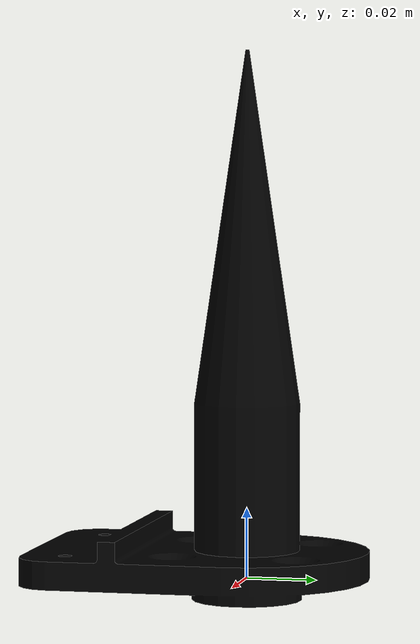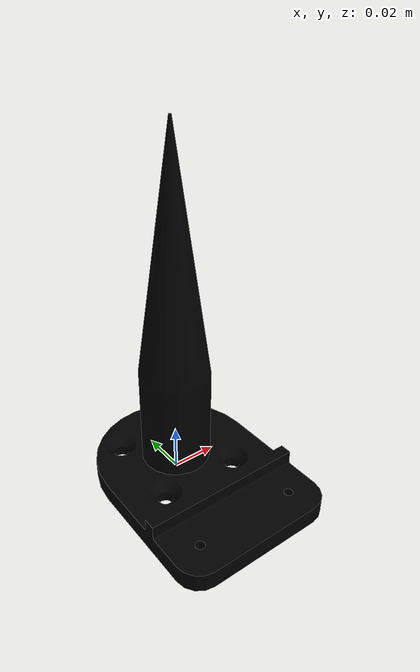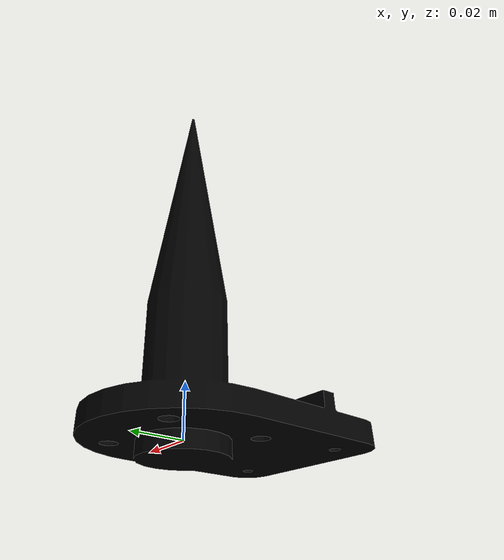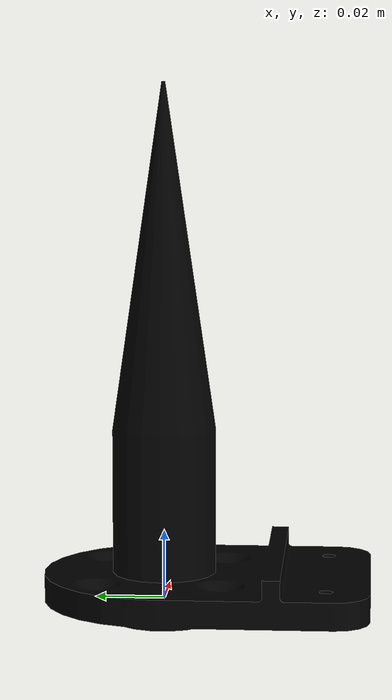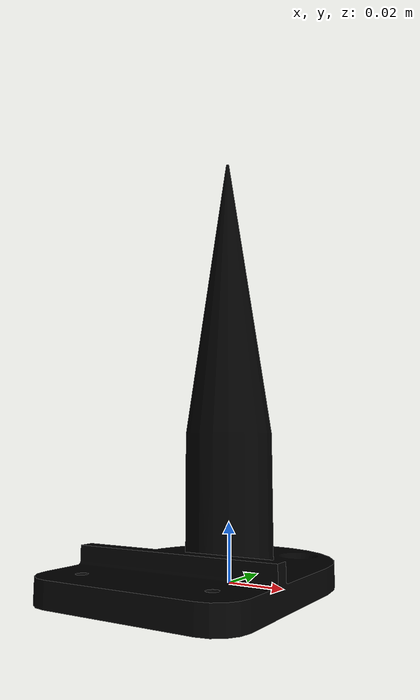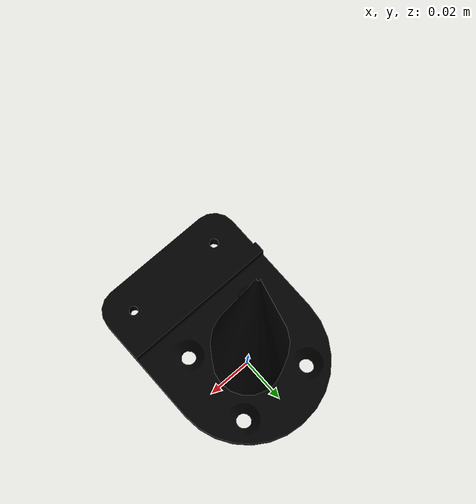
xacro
<?xml version="1.0" ?>
<robot name="$(arg name)" xmlns:xacro="http://ros.org/wiki/xacro">

    <!-- import macros -->
    <xacro:include filename="$(find alpaka_test_tcp_description)/urdf/test_tcp_macro.xacro"/>

    <!-- robot name parameter -->
    <xacro:property name="name" value="test_tcp" />

    <xacro:arg name="prefix" default="" />

    <!-- create base link -->
    <link name="base_link"/>
    <xacro:test_tcp prefix="$(arg prefix)" parent="base_link" />

</robot>

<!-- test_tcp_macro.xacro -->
<robot xmlns:xacro="http://wiki.ros.org/xacro">

	<xacro:macro name="test_tcp" params="
		prefix
		parent">
		<material name="black">
			<color rgba="0 0 0 1" />
		</material>
		<!--Link definitions-->
		<link name="${prefix}test_tcp_link">
			<visual>
				<origin xyz="0 0 0" rpy="0 0 0" />
				<geometry>
					<mesh filename="package://alpaka_test_tcp_description/meshes/visual/test_tcp_link_visual.STL" />
				</geometry>
				<material name="black" />
			</visual>
			<collision>
				<origin xyz="0 0 0" rpy="0 0 0" />
				<geometry>
					<mesh filename="package://alpaka_test_tcp_description/meshes/collision/test_tcp_link_collision.STL" />
				</geometry>
			</collision>
		</link>
		<link name="${prefix}tcp_camera_link" />
		<link name="tcp_endpoint_link" />
		<joint name="base_test_tcp_joint" type="fixed">
			<parent link="${parent}" />
			<child link="${prefix}test_tcp_link" />
			<origin xyz="0 0 0" rpy="0 0 0" />
		</joint>
		<joint name="tcp_camera_joint" type="fixed">
			<parent link="${prefix}test_tcp_link" />
			<child link="tcp_camera_link" />
			<origin xyz="0 -0.0475 0.008" rpy="0 0 0" />
		</joint>
		<joint name="tcp_endpoint_joint" type="fixed">
			<parent link="test_tcp_link" />
			<child link="tcp_endpoint_link" />
			<origin xyz="0 0 0.15" rpy="0 0 0" />
		</joint>
	</xacro:macro>
</robot>
